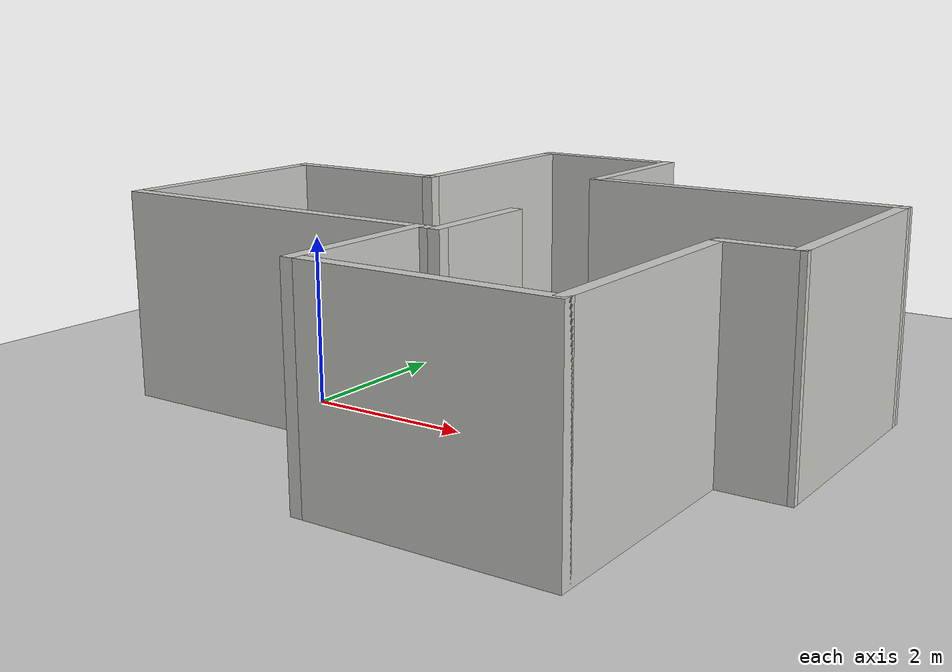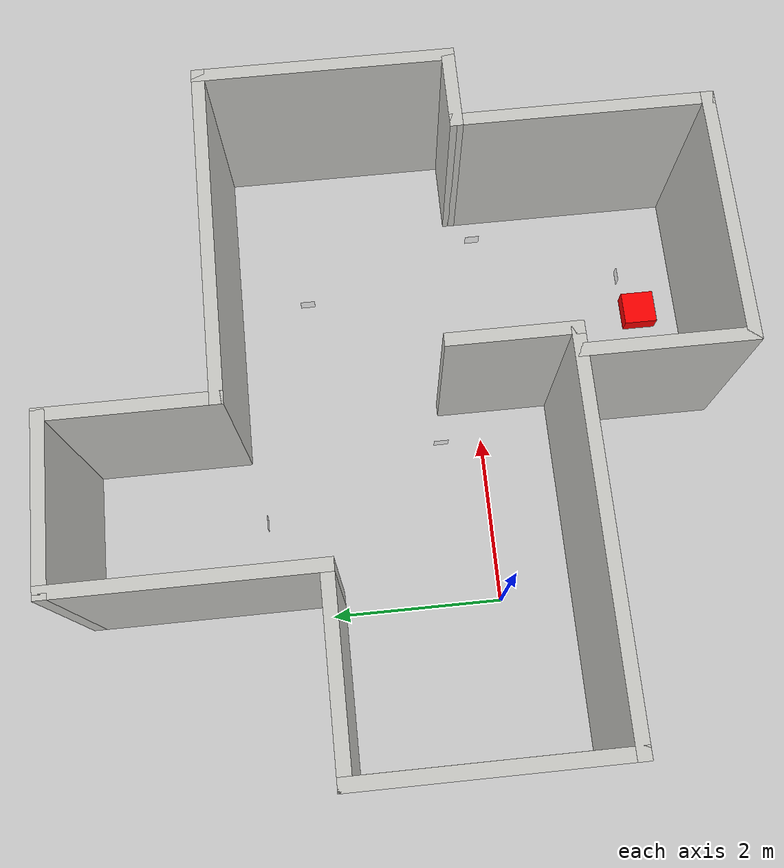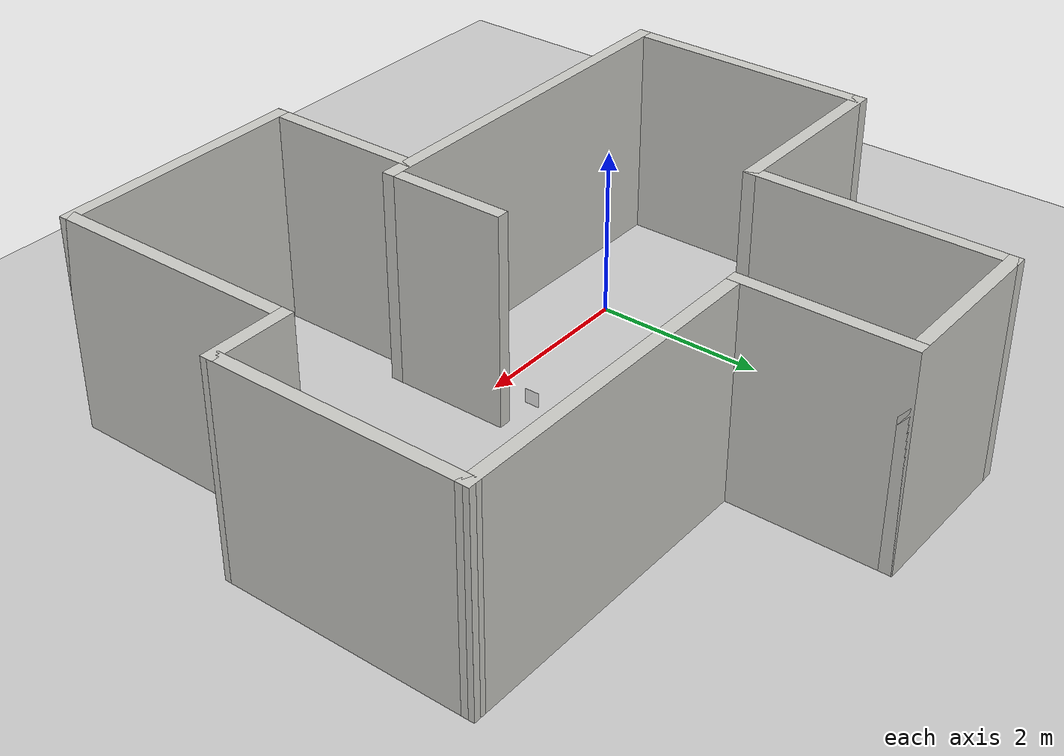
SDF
<sdf version="1.4">
  <world name="default">

    <scene>
      <ambient>0.4 0.4 0.4 1</ambient>
      <background>0.7 0.7 0.7 1</background>
      <shadows>true</shadows>
    </scene>

    <!-- A global light source -->
    <include>
      <uri>model://sun</uri>
    </include>

    <!-- A ground plane -->
    <include>
      <uri>model://ground_plane</uri>
    </include>

    <physics type="ode">
      <real_time_update_rate>1000.0</real_time_update_rate>
      <max_step_size>0.001</max_step_size>
      <real_time_factor>1</real_time_factor>
      <ode>
        <solver>
          <type>quick</type>
          <iters>150</iters>
          <precon_iters>0</precon_iters>
          <sor>1.400000</sor>
          <use_dynamic_moi_rescaling>1</use_dynamic_moi_rescaling>
        </solver>
        <constraints>
          <cfm>0.00001</cfm>
          <erp>0.2</erp>
          <contact_max_correcting_vel>2000.000000</contact_max_correcting_vel>
          <contact_surface_layer>0.01000</contact_surface_layer>
        </constraints>
      </ode>
    </physics>

 <!-- Load world -->

     <include>
      <uri>model://aruco_visual_marker_0_ekf</uri>
    </include>

     <include>
      <uri>model://aruco_visual_marker_1_ekf</uri>
    </include>
     <include>
      <uri>model://aruco_visual_marker_2</uri>
    </include>
     <include>
      <uri>model://aruco_visual_marker_3</uri>
    </include>
     <include>
      <uri>model://aruco_visual_marker_4</uri>
    </include>
     <include>
      <uri>model://ekfWallsRight</uri>
    </include>
     <include>
      <uri>model://Final_Box</uri>
    </include>

    <gui fullscreen='0'>
      <camera name='user_camera'>
        <pose>0.8 0.0 12.0 0 1.5708 0</pose>
        <view_controller>orbit</view_controller>
      </camera>
    </gui>

   </world>

</sdf>

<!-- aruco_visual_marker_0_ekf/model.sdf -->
<sdf version='1.5'>
  <model name='aruco_visual_marker_0_ekf'>

    <link name='marker'>
      <pose frame=''>4.7 -0.2 0.0889 0 -1.5708 0</pose>
      <visual name='visual'>
        <geometry>
          <box>
            <size>0.1778 0.1778 1e-5</size>
          </box>
        </geometry>
        <material>
          <script>
            <uri>model://aruco_visual_marker_0/materials/scripts</uri>
            <uri>model://aruco_visual_marker_0/materials/textures</uri>
            <name>ArucoVisualMarker0/Marker</name>
          </script>
          <ambient>1 1 1 1</ambient>
          <diffuse>1 1 1 1</diffuse>
          <specular>0 0 0 1</specular>
          <emissive>1 1 1 0</emissive>
          <shader type='vertex'>
            <normal_map>__default__</normal_map>
          </shader>
        </material>
        <pose frame=''>0 0 0 0 -0 0</pose>
        <cast_shadows>1</cast_shadows>
        <transparency>0</transparency>
      </visual>
      <collision name='collision'>
        <laser_retro>0</laser_retro>
        <max_contacts>10</max_contacts>
        <pose frame=''>0 0 0 0 -0 0</pose>
        <geometry>
          <box>
            <size>0.1778 0.1778 1e-05</size>
          </box>
        </geometry>
      </collision>
    </link>

    <link name='marker_pad'>
      <pose frame='marker'>0 0 -1e-5 0 -0 0</pose>
      <visual name='visual'>
        <geometry>
          <box>
            <size>0.1778 0.1778 1e-5</size>
          </box>
        </geometry>
        <material>
          <lighting>1</lighting>
          <script>
            <uri>file://media/materials/scripts/gazebo.material</uri>
            <name>Gazebo/White</name>
          </script>
          <ambient>0.3 0.3 0.3 1</ambient>
          <diffuse>0.7 0.7 0.7 1</diffuse>
          <specular>0.01 0.01 0.01 1</specular>
          <emissive>1 1 1 0</emissive>
          <shader type='vertex'>
            <normal_map>__default__</normal_map>
          </shader>
        </material>
        <cast_shadows>1</cast_shadows>
        <transparency>0</transparency>
      </visual>
      <collision name='collision'>
        <laser_retro>0</laser_retro>
        <max_contacts>10</max_contacts>
        <pose frame=''>0 0 0 0 -0 0</pose>
        <geometry>
          <box>
            <size>0.1778 0.1778 1e-5</size>
          </box>
        </geometry>
      </collision>
    </link>

    <joint name='marker_JOINT_marker_pad' type='revolute'>
      <parent>marker</parent>
      <child>marker_pad</child>
      <pose frame=''>0 0 0 0 -0 0</pose>
      <axis>
        <xyz>0 0 1</xyz>
        <limit>
          <upper>0</upper>
          <lower>0</lower>
        </limit>
      </axis>
    </joint>

    <static>1</static>
    <allow_auto_disable>1</allow_auto_disable>

  </model>
</sdf>

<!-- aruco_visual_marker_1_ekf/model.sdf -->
<sdf version='1.5'>
  <model name='aruco_visual_marker_1_ekf'>

    <link name='marker'>
      <pose frame=''>2 0.5 0.0889 0 -1.5708 0</pose>
      <visual name='visual'>
        <geometry>
          <box>
            <size>0.1778 0.1778 1e-5</size>
          </box>
        </geometry>
        <material>
          <script>
            <uri>model://aruco_visual_marker_1/materials/scripts</uri>
            <uri>model://aruco_visual_marker_1/materials/textures</uri>
            <name>ArucoVisualMarker1/Marker</name>
          </script>
          <ambient>1 1 1 1</ambient>
          <diffuse>1 1 1 1</diffuse>
          <specular>0 0 0 1</specular>
          <emissive>1 1 1 0</emissive>
          <shader type='vertex'>
            <normal_map>__default__</normal_map>
          </shader>
        </material>
        <pose frame=''>0 0 0 0 -0 0</pose>
        <cast_shadows>1</cast_shadows>
        <transparency>0</transparency>
      </visual>
      <collision name='collision'>
        <laser_retro>0</laser_retro>
        <max_contacts>10</max_contacts>
        <pose frame=''>0 0 0 0 -0 0</pose>
        <geometry>
          <box>
            <size>0.1778 0.1778 1e-05</size>
          </box>
        </geometry>
      </collision>
    </link>

    <link name='marker_pad'>
      <pose frame='marker'>0 0 -1e-5 0 -0 0</pose>
      <visual name='visual'>
        <geometry>
          <box>
            <size>0.1778 0.1778 1e-5</size>
          </box>
        </geometry>
        <material>
          <lighting>1</lighting>
          <script>
            <uri>file://media/materials/scripts/gazebo.material</uri>
            <name>Gazebo/White</name>
          </script>
          <ambient>0.3 0.3 0.3 1</ambient>
          <diffuse>0.7 0.7 0.7 1</diffuse>
          <specular>0.01 0.01 0.01 1</specular>
          <emissive>1 1 1 0</emissive>
          <shader type='vertex'>
            <normal_map>__default__</normal_map>
          </shader>
        </material>
        <cast_shadows>1</cast_shadows>
        <transparency>0</transparency>
      </visual>
      <collision name='collision'>
        <laser_retro>0</laser_retro>
        <max_contacts>10</max_contacts>
        <pose frame=''>0 0 0 0 -0 0</pose>
        <geometry>
          <box>
            <size>0.1778 0.1778 1e-5</size>
          </box>
        </geometry>
      </collision>
    </link>

    <joint name='marker_JOINT_marker_pad' type='revolute'>
      <parent>marker</parent>
      <child>marker_pad</child>
      <pose frame=''>0 0 0 0 -0 0</pose>
      <axis>
        <xyz>0 0 1</xyz>
        <limit>
          <upper>0</upper>
          <lower>0</lower>
        </limit>
      </axis>
    </joint>

    <static>1</static>
    <allow_auto_disable>1</allow_auto_disable>

  </model>
</sdf>

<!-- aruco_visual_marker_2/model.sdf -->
<sdf version='1.5'>
  <model name='aruco_visual_marker_2'>

    <link name='marker'>
      <pose frame=''>1.2 2.7 0.0889 0 -1.5708 1.5708</pose>
      <visual name='visual'>
        <geometry>
          <box>
            <size>0.1778 0.1778 1e-5</size>
          </box>
        </geometry>
        <material>
          <script>
            <uri>model://aruco_visual_marker_2/materials/scripts</uri>
            <uri>model://aruco_visual_marker_2/materials/textures</uri>
            <name>ArucoVisualMarker2/Marker</name>
          </script>
          <ambient>1 1 1 1</ambient>
          <diffuse>1 1 1 1</diffuse>
          <specular>0 0 0 1</specular>
          <emissive>1 1 1 0</emissive>
          <shader type='vertex'>
            <normal_map>__default__</normal_map>
          </shader>
        </material>
        <pose frame=''>0 0 0 0 -0 0</pose>
        <cast_shadows>1</cast_shadows>
        <transparency>0</transparency>
      </visual>
      <collision name='collision'>
        <laser_retro>0</laser_retro>
        <max_contacts>10</max_contacts>
        <pose frame=''>0 0 0 0 -0 0</pose>
        <geometry>
          <box>
            <size>0.1778 0.1778 1e-05</size>
          </box>
        </geometry>
      </collision>
    </link>

    <link name='marker_pad'>
      <pose frame='marker'>0 0 -1e-5 0 -0 0</pose>
      <visual name='visual'>
        <geometry>
          <box>
            <size>0.1778 0.1778 1e-5</size>
          </box>
        </geometry>
        <material>
          <lighting>1</lighting>
          <script>
            <uri>file://media/materials/scripts/gazebo.material</uri>
            <name>Gazebo/White</name>
          </script>
          <ambient>0.3 0.3 0.3 1</ambient>
          <diffuse>0.7 0.7 0.7 1</diffuse>
          <specular>0.01 0.01 0.01 1</specular>
          <emissive>1 1 1 0</emissive>
          <shader type='vertex'>
            <normal_map>__default__</normal_map>
          </shader>
        </material>
        <cast_shadows>1</cast_shadows>
        <transparency>0</transparency>
      </visual>
      <collision name='collision'>
        <laser_retro>0</laser_retro>
        <max_contacts>10</max_contacts>
        <pose frame=''>0 0 0 0 -0 0</pose>
        <geometry>
          <box>
            <size>0.1778 0.1778 1e-5</size>
          </box>
        </geometry>
      </collision>
    </link>

    <joint name='marker_JOINT_marker_pad' type='revolute'>
      <parent>marker</parent>
      <child>marker_pad</child>
      <pose frame=''>0 0 0 0 -0 0</pose>
      <axis>
        <xyz>0 0 1</xyz>
        <limit>
          <upper>0</upper>
          <lower>0</lower>
        </limit>
      </axis>
    </joint>

    <static>1</static>
    <allow_auto_disable>1</allow_auto_disable>

  </model>
</sdf>

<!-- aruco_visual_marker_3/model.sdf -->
<sdf version='1.5'>
  <model name='aruco_visual_marker_3'>

    <link name='marker'>
      <pose frame=''>4 2 0.0889 0 -1.5708 0</pose>
      <visual name='visual'>
        <geometry>
          <box>
            <size>0.1778 0.1778 1e-5</size>
          </box>
        </geometry>
        <material>
          <script>
            <uri>model://aruco_visual_marker_3/materials/scripts</uri>
            <uri>model://aruco_visual_marker_3/materials/textures</uri>
            <name>ArucoVisualMarker3/Marker</name>
          </script>
          <ambient>1 1 1 1</ambient>
          <diffuse>1 1 1 1</diffuse>
          <specular>0 0 0 1</specular>
          <emissive>1 1 1 0</emissive>
          <shader type='vertex'>
            <normal_map>__default__</normal_map>
          </shader>
        </material>
        <pose frame=''>0 0 0 0 -0 0</pose>
        <cast_shadows>1</cast_shadows>
        <transparency>0</transparency>
      </visual>
      <collision name='collision'>
        <laser_retro>0</laser_retro>
        <max_contacts>10</max_contacts>
        <pose frame=''>0 0 0 0 -0 0</pose>
        <geometry>
          <box>
            <size>0.1778 0.1778 1e-05</size>
          </box>
        </geometry>
      </collision>
    </link>

    <link name='marker_pad'>
      <pose frame='marker'>0 0 -1e-5 0 -0 0</pose>
      <visual name='visual'>
        <geometry>
          <box>
            <size>0.1778 0.1778 1e-5</size>
          </box>
        </geometry>
        <material>
          <lighting>1</lighting>
          <script>
            <uri>file://media/materials/scripts/gazebo.material</uri>
            <name>Gazebo/White</name>
          </script>
          <ambient>0.3 0.3 0.3 1</ambient>
          <diffuse>0.7 0.7 0.7 1</diffuse>
          <specular>0.01 0.01 0.01 1</specular>
          <emissive>1 1 1 0</emissive>
          <shader type='vertex'>
            <normal_map>__default__</normal_map>
          </shader>
        </material>
        <cast_shadows>1</cast_shadows>
        <transparency>0</transparency>
      </visual>
      <collision name='collision'>
        <laser_retro>0</laser_retro>
        <max_contacts>10</max_contacts>
        <pose frame=''>0 0 0 0 -0 0</pose>
        <geometry>
          <box>
            <size>0.1778 0.1778 1e-5</size>
          </box>
        </geometry>
      </collision>
    </link>

    <joint name='marker_JOINT_marker_pad' type='revolute'>
      <parent>marker</parent>
      <child>marker_pad</child>
      <pose frame=''>0 0 0 0 -0 0</pose>
      <axis>
        <xyz>0 0 1</xyz>
        <limit>
          <upper>0</upper>
          <lower>0</lower>
        </limit>
      </axis>
    </joint>

    <static>1</static>
    <allow_auto_disable>1</allow_auto_disable>

  </model>
</sdf>

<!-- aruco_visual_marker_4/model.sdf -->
<sdf version='1.5'>
  <model name='aruco_visual_marker_4'>

    <link name='marker'>
      <pose frame=''>4 -2 0.0889 0 -1.5708 -1.5708</pose>
      <visual name='visual'>
        <geometry>
          <box>
            <size>0.1778 0.1778 1e-5</size>
          </box>
        </geometry>
        <material>
          <script>
            <uri>model://aruco_visual_marker_4/materials/scripts</uri>
            <uri>model://aruco_visual_marker_4/materials/textures</uri>
            <name>ArucoVisualMarker4/Marker</name>
          </script>
          <ambient>1 1 1 1</ambient>
          <diffuse>1 1 1 1</diffuse>
          <specular>0 0 0 1</specular>
          <emissive>1 1 1 0</emissive>
          <shader type='vertex'>
            <normal_map>__default__</normal_map>
          </shader>
        </material>
        <pose frame=''>0 0 0 0 -0 0</pose>
        <cast_shadows>1</cast_shadows>
        <transparency>0</transparency>
      </visual>
      <collision name='collision'>
        <laser_retro>0</laser_retro>
        <max_contacts>10</max_contacts>
        <pose frame=''>0 0 0 0 -0 0</pose>
        <geometry>
          <box>
            <size>0.1778 0.1778 1e-05</size>
          </box>
        </geometry>
      </collision>
    </link>

    <link name='marker_pad'>
      <pose frame='marker'>0 0 -1e-5 0 -0 0</pose>
      <visual name='visual'>
        <geometry>
          <box>
            <size>0.1778 0.1778 1e-5</size>
          </box>
        </geometry>
        <material>
          <lighting>1</lighting>
          <script>
            <uri>file://media/materials/scripts/gazebo.material</uri>
            <name>Gazebo/White</name>
          </script>
          <ambient>0.3 0.3 0.3 1</ambient>
          <diffuse>0.7 0.7 0.7 1</diffuse>
          <specular>0.01 0.01 0.01 1</specular>
          <emissive>1 1 1 0</emissive>
          <shader type='vertex'>
            <normal_map>__default__</normal_map>
          </shader>
        </material>
        <cast_shadows>1</cast_shadows>
        <transparency>0</transparency>
      </visual>
      <collision name='collision'>
        <laser_retro>0</laser_retro>
        <max_contacts>10</max_contacts>
        <pose frame=''>0 0 0 0 -0 0</pose>
        <geometry>
          <box>
            <size>0.1778 0.1778 1e-5</size>
          </box>
        </geometry>
      </collision>
    </link>

    <joint name='marker_JOINT_marker_pad' type='revolute'>
      <parent>marker</parent>
      <child>marker_pad</child>
      <pose frame=''>0 0 0 0 -0 0</pose>
      <axis>
        <xyz>0 0 1</xyz>
        <limit>
          <upper>0</upper>
          <lower>0</lower>
        </limit>
      </axis>
    </joint>

    <static>1</static>
    <allow_auto_disable>1</allow_auto_disable>

  </model>
</sdf>

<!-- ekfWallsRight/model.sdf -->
<sdf version='1.6'>
  <model name='ekfWallsRight'>
    <pose frame=''>2 1 0 0 -0 -1.5708</pose>
    <link name='Wall_14'>
      <collision name='Wall_14_Collision'>
        <geometry>
          <box>
            <size>2.25 0.15 2.5</size>
          </box>
        </geometry>
        <pose frame=''>0 0 1.25 0 -0 0</pose>
      </collision>
      <visual name='Wall_14_Visual'>
        <pose frame=''>0 0 1.25 0 -0 0</pose>
        <geometry>
          <box>
            <size>2.25 0.15 2.5</size>
          </box>
        </geometry>
        <material>
          <script>
            <uri>file://media/materials/scripts/gazebo.material</uri>
            <name>Gazebo/CeilingTiled</name>
          </script>
	  <ambient>1 1 1 1</ambient>
        </material>
        <meta>
          <layer>0</layer>
        </meta>
      </visual>
      <pose frame=''>-0.924999 -2.85004 0 0 -0 1.5708</pose>
    </link>
    <link name='Wall_15'>
      <collision name='Wall_15_Collision'>
        <geometry>
          <box>
            <size>3 0.15 2.5</size>
          </box>
        </geometry>
        <pose frame=''>0 0 1.25 0 -0 0</pose>
      </collision>
      <visual name='Wall_15_Visual'>
        <pose frame=''>0 0 1.25 0 -0 0</pose>
        <geometry>
          <box>
            <size>3 0.15 2.5</size>
          </box>
        </geometry>
        <material>
          <script>
            <uri>file://media/materials/scripts/gazebo.material</uri>
            <name>Gazebo/CeilingTiled</name>
          </script>
          <ambient>1 1 1 1</ambient>
        </material>
        <meta>
          <layer>0</layer>
        </meta>
      </visual>
      <pose frame=''>-2.35 -1.80004 0 0 -0 3.14159</pose>
    </link>
    <link name='Wall_20'>
      <collision name='Wall_20_Collision'>
        <geometry>
          <box>
            <size>2 0.15 2.5</size>
          </box>
        </geometry>
        <pose frame=''>0 0 1.25 0 -0 0</pose>
      </collision>
      <visual name='Wall_20_Visual'>
        <pose frame=''>0 0 1.25 0 -0 0</pose>
        <geometry>
          <box>
            <size>2 0.15 2.5</size>
          </box>
        </geometry>
        <material>
          <script>
            <uri>file://media/materials/scripts/gazebo.material</uri>
            <name>Gazebo/CeilingTiled</name>
          </script>
          <ambient>1 1 1 1</ambient>
        </material>
        <meta>
          <layer>0</layer>
        </meta>
      </visual>
      <pose frame=''>-3.775 -0.875043 0 0 -0 1.5708</pose>
    </link>
    <link name='Wall_23'>
      <collision name='Wall_23_Collision'>
        <geometry>
          <box>
            <size>2 0.15 2.5</size>
          </box>
        </geometry>
        <pose frame=''>0 0 1.25 0 -0 0</pose>
      </collision>
      <visual name='Wall_23_Visual'>
        <pose frame=''>0 0 1.25 0 -0 0</pose>
        <geometry>
          <box>
            <size>2 0.15 2.5</size>
          </box>
        </geometry>
        <material>
          <script>
            <uri>file://media/materials/scripts/gazebo.material</uri>
            <name>Gazebo/CeilingTiled</name>
          </script>
          <ambient>1 1 1 1</ambient>
        </material>
        <meta>
          <layer>0</layer>
        </meta>
      </visual>
      <pose frame=''>-2.85 0.049957 0 0 -0 0</pose>
    </link>
    <link name='Wall_25'>
      <collision name='Wall_25_Collision'>
        <geometry>
          <box>
            <size>4 0.15 2.5</size>
          </box>
        </geometry>
        <pose frame=''>0 0 1.25 0 -0 0</pose>
      </collision>
      <visual name='Wall_25_Visual'>
        <pose frame=''>0 0 1.25 0 -0 0</pose>
        <geometry>
          <box>
            <size>4 0.15 2.5</size>
          </box>
        </geometry>
        <material>
          <script>
            <uri>file://media/materials/scripts/gazebo.material</uri>
            <name>Gazebo/CeilingTiled</name>
          </script>
          <ambient>1 1 1 1</ambient>
        </material>
        <meta>
          <layer>0</layer>
        </meta>
      </visual>
      <pose frame=''>-1.925 1.97496 0 0 -0 1.5708</pose>
    </link>
    <link name='Wall_26'>
      <collision name='Wall_26_Collision'>
        <geometry>
          <box>
            <size>3 0.15 2.5</size>
          </box>
        </geometry>
        <pose frame=''>0 0 1.25 0 -0 0</pose>
      </collision>
      <visual name='Wall_26_Visual'>
        <pose frame=''>0 0 1.25 0 -0 0</pose>
        <geometry>
          <box>
            <size>3 0.15 2.5</size>
          </box>
        </geometry>
        <material>
          <script>
            <uri>file://media/materials/scripts/gazebo.material</uri>
            <name>Gazebo/CeilingTiled</name>
          </script>
          <ambient>1 1 1 1</ambient>
        </material>
        <meta>
          <layer>0</layer>
        </meta>
      </visual>
      <pose frame=''>-0.5 3.89833 0 0 0 -0.001139</pose>
    </link>
    <link name='Wall_37'>
      <collision name='Wall_37_Collision'>
        <geometry>
          <box>
            <size>1 0.15 2.5</size>
          </box>
        </geometry>
        <pose frame=''>0 0 1.25 0 -0 0</pose>
      </collision>
      <visual name='Wall_37_Visual'>
        <pose frame=''>0 0 1.25 0 -0 0</pose>
        <geometry>
          <box>
            <size>1 0.15 2.5</size>
          </box>
        </geometry>
        <material>
          <script>
            <uri>file://media/materials/scripts/gazebo.material</uri>
            <name>Gazebo/CeilingTiled</name>
          </script>
          <ambient>1 1 1 1</ambient>
        </material>
        <meta>
          <layer>0</layer>
        </meta>
      </visual>
      <pose frame=''>0.924999 3.47171 0 0 0 -1.5708</pose>
    </link>
    <link name='Wall_39'>
      <collision name='Wall_39_Collision'>
        <geometry>
          <box>
            <size>3 0.15 2.5</size>
          </box>
        </geometry>
        <pose frame=''>0 0 1.25 0 -0 0</pose>
      </collision>
      <visual name='Wall_39_Visual'>
        <pose frame=''>0 0 1.25 0 -0 0</pose>
        <geometry>
          <box>
            <size>3 0.15 2.5</size>
          </box>
        </geometry>
        <material>
          <script>
            <uri>file://media/materials/scripts/gazebo.material</uri>
            <name>Gazebo/CeilingTiled</name>
          </script>
          <ambient>1 1 1 1</ambient>
        </material>
        <meta>
          <layer>0</layer>
        </meta>
      </visual>
      <pose frame=''>2.35 3.04671 0 0 -0 0</pose>
    </link>
    <link name='Wall_40'>
      <collision name='Wall_40_Collision'>
        <geometry>
          <box>
            <size>3 0.15 2.5</size>
          </box>
        </geometry>
        <pose frame=''>0 0 1.25 0 -0 0</pose>
      </collision>
      <visual name='Wall_40_Visual'>
        <pose frame=''>0 0 1.25 0 -0 0</pose>
        <geometry>
          <box>
            <size>3 0.15 2.5</size>
          </box>
        </geometry>
        <material>
          <script>
            <uri>file://media/materials/scripts/gazebo.material</uri>
            <name>Gazebo/CeilingTiled</name>
          </script>
          <ambient>1 1 1 1</ambient>
        </material>
        <meta>
          <layer>0</layer>
        </meta>
      </visual>
      <pose frame=''>3.775 1.62171 0 0 0 -1.5708</pose>
    </link>
    <link name='Wall_45'>
      <collision name='Wall_45_Collision'>
        <geometry>
          <box>
            <size>4.5 0.15 2.5</size>
          </box>
        </geometry>
        <pose frame=''>0 0 1.25 0 -0 0</pose>
      </collision>
      <visual name='Wall_45_Visual'>
        <pose frame=''>0 0 1.25 0 -0 0</pose>
        <geometry>
          <box>
            <size>4.5 0.15 2.5</size>
          </box>
        </geometry>
        <material>
          <script>
            <uri>file://media/materials/scripts/gazebo.material</uri>
            <name>Gazebo/CeilingTiled</name>
          </script>
          <ambient>1 1 1 1</ambient>
        </material>
        <meta>
          <layer>0</layer>
        </meta>
      </visual>
      <pose frame=''>1.925 -1.72504 0 0 -0 1.5708</pose>
    </link>
    <link name='Wall_48'>
      <collision name='Wall_48_Collision'>
        <geometry>
          <box>
            <size>1.5 0.15 2.5</size>
          </box>
        </geometry>
        <pose frame=''>0 0 1.25 0 -0 0</pose>
      </collision>
      <visual name='Wall_48_Visual'>
        <pose frame=''>0 0 1.25 0 -0 0</pose>
        <geometry>
          <box>
            <size>1.5 0.15 2.5</size>
          </box>
        </geometry>
        <material>
          <script>
            <uri>file://media/materials/scripts/gazebo.material</uri>
            <name>Gazebo/CeilingTiled</name>
          </script>
          <ambient>1 1 1 1</ambient>
        </material>
        <meta>
          <layer>0</layer>
        </meta>
      </visual>
      <pose frame=''>1.25 0.449957 0 0 -0 3.14159</pose>
    </link>
    <link name='Wall_50'>
      <collision name='Wall_50_Collision'>
        <geometry>
          <box>
            <size>2 0.15 2.5</size>
          </box>
        </geometry>
        <pose frame=''>0 0 1.25 0 -0 0</pose>
      </collision>
      <visual name='Wall_50_Visual'>
        <pose frame=''>0 0 1.25 0 -0 0</pose>
        <geometry>
          <box>
            <size>2 0.15 2.5</size>
          </box>
        </geometry>
        <material>
          <script>
            <uri>file://media/materials/scripts/gazebo.material</uri>
            <name>Gazebo/CeilingTiled</name>
          </script>
          <ambient>1 1 1 1</ambient>
        </material>
        <meta>
          <layer>0</layer>
        </meta>
      </visual>
      <pose frame=''>2.85 0.196712 0 0 -0 3.14159</pose>
    </link>
    <link name='Wall_9'>
      <collision name='Wall_9_Collision'>
        <geometry>
          <box>
            <size>3 0.15 2.5</size>
          </box>
        </geometry>
        <pose frame=''>0 0 1.25 0 -0 0</pose>
      </collision>
      <visual name='Wall_9_Visual'>
        <pose frame=''>0 0 1.25 0 -0 0</pose>
        <geometry>
          <box>
            <size>3 0.15 2.5</size>
          </box>
        </geometry>
        <material>
          <script>
            <uri>file://media/materials/scripts/gazebo.material</uri>
            <name>Gazebo/CeilingTiled</name>
          </script>
          <ambient>1 1 1 1</ambient>
        </material>
        <meta>
          <layer>0</layer>
        </meta>
      </visual>
      <pose frame=''>0.500001 -3.90004 0 0 -0 0</pose>
    </link>
    <static>1</static>
  </model>
</sdf>

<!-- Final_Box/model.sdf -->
<sdf version='1.6'>
  <model name='block_color'>
    <link name='link_1'>
      <pose frame=''>3.5 -2.2 0 0 -0 0</pose>
      <inertial>
        <mass>1</mass>
        <inertia>
          <ixx>0.166667</ixx>
          <ixy>0</ixy>
          <ixz>0</ixz>
          <iyy>0.166667</iyy>
          <iyz>0</iyz>
          <izz>0.166667</izz>
        </inertia>
        <pose frame=''>0 0 0 0 -0 0</pose>
      </inertial>
      <gravity>1</gravity>
      <self_collide>0</self_collide>
      <kinematic>0</kinematic>
      <visual name='visual'>
        <pose frame=''>0 0 0 0 -0 0</pose>
        <geometry>
          <box>
            <size>0.4 0.4 0.4</size>
          </box>
        </geometry>
        <material>
          <lighting>1</lighting>
          <script>
            <uri>file://media/materials/scripts/gazebo.material</uri>
            <name>Gazebo/Grey</name>
          </script>
          <shader type='pixel'>
            <normal_map>__default__</normal_map>
          </shader>
          <ambient>1 0 0 1</ambient>
          <diffuse>1 0 0 1</diffuse>
          <specular>0.1 0.1 0.1 1</specular>
          <emissive>0 0 0 1</emissive>
        </material>
        <transparency>0</transparency>
        <cast_shadows>1</cast_shadows>
      </visual>
      <collision name='collision'>
        <laser_retro>0</laser_retro>
        <max_contacts>10</max_contacts>
        <pose frame=''>0 0 0 0 -0 0</pose>
        <geometry>
          <box>
            <size>0.4 0.4 0.4</size>
          </box>
        </geometry>
        <surface>
          <friction>
            <ode>
              <mu>1</mu>
              <mu2>1</mu2>
              <fdir1>0 0 0</fdir1>
              <slip1>0</slip1>
              <slip2>0</slip2>
            </ode>
            <torsional>
              <coefficient>1</coefficient>
              <patch_radius>0</patch_radius>
              <surface_radius>0</surface_radius>
              <use_patch_radius>1</use_patch_radius>
              <ode>
                <slip>0</slip>
              </ode>
            </torsional>
          </friction>
          <bounce>
            <restitution_coefficient>0</restitution_coefficient>
            <threshold>1e+06</threshold>
          </bounce>
          <contact>
            <collide_without_contact>0</collide_without_contact>
            <collide_without_contact_bitmask>1</collide_without_contact_bitmask>
            <collide_bitmask>1</collide_bitmask>
            <ode>
              <soft_cfm>0</soft_cfm>
              <soft_erp>0.2</soft_erp>
              <kp>1e+13</kp>
              <kd>1</kd>
              <max_vel>0.01</max_vel>
              <min_depth>0</min_depth>
            </ode>
            <bullet>
              <split_impulse>1</split_impulse>
              <split_impulse_penetration_threshold>-0.01</split_impulse_penetration_threshold>
              <soft_cfm>0</soft_cfm>
              <soft_erp>0.2</soft_erp>
              <kp>1e+13</kp>
              <kd>1</kd>
            </bullet>
          </contact>
        </surface>
      </collision>
    </link>
    <static>0</static>
    <allow_auto_disable>1</allow_auto_disable>
  </model>
</sdf>
